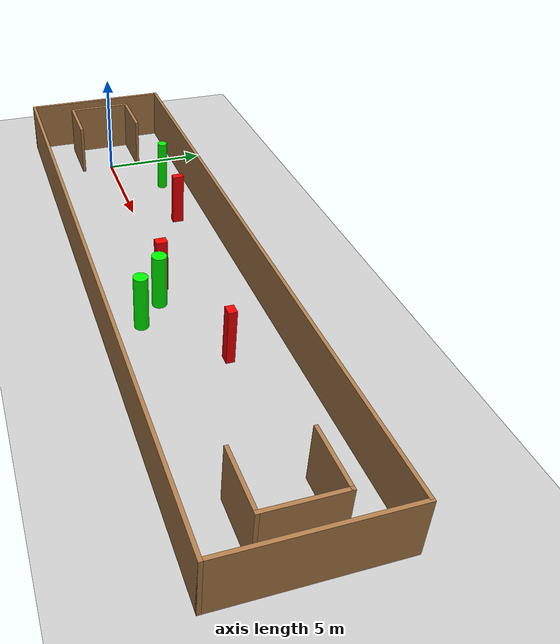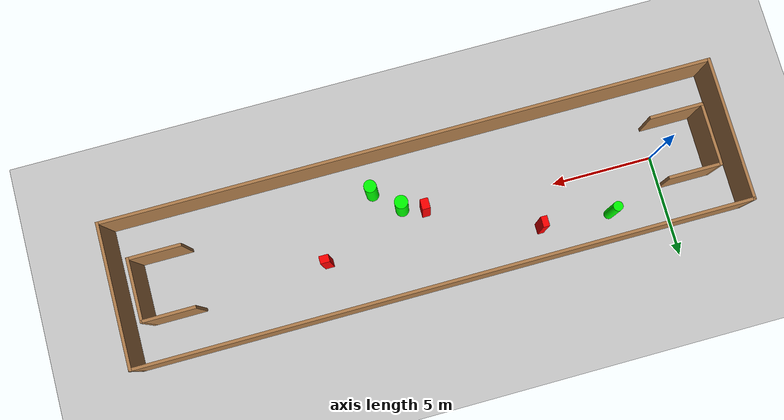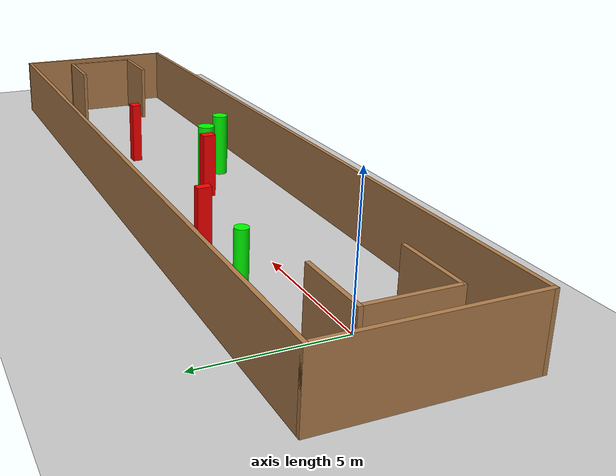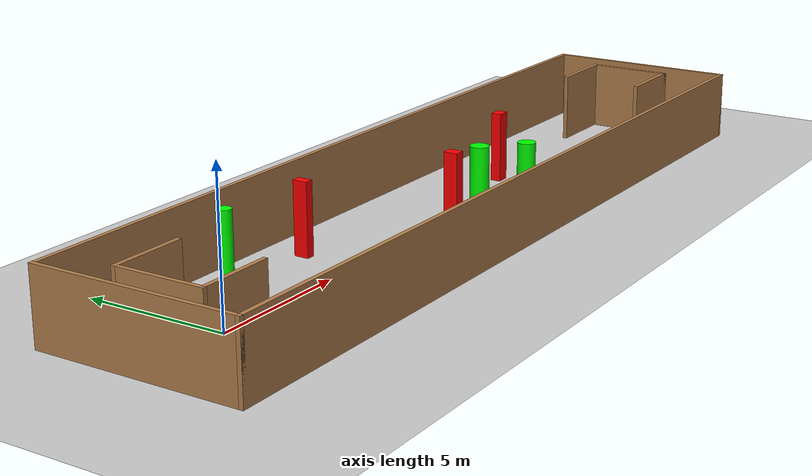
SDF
<sdf version="1.7">
 <world name="default">
  <light name="sun" type="directional">
   <pose>0 0 10 0 -0 0</pose>
   <diffuse>0.8 0.8 0.8 1</diffuse>
   <specular>0.2 0.2 0.2 1</specular>
   <attenuation>
    <range>1000</range>
    <constant>0.9</constant>
    <linear>0.01</linear>
    <quadratic>0.001</quadratic>
   </attenuation>
   <direction>-0.5 0.1 -0.9</direction>
   <spot><inner_angle>0</inner_angle><outer_angle>0</outer_angle><falloff>0</falloff></spot>
  </light>
  <model name="ground_plane">
   <static>1</static>
   <link name="link">
    <collision name="collision">
     <geometry><plane><normal>0 0 1</normal><size>100 100</size></plane></geometry>
     <surface>
      <contact><collide_bitmask>65535</collide_bitmask></contact>
      <friction><ode><mu>100</mu><mu2>50</mu2></ode></friction>
     </surface>
    </collision>
    <visual name="visual">
     <cast_shadows>0</cast_shadows>
     <geometry><plane><normal>0 0 1</normal><size>100 100</size></plane></geometry>
     <material>
      <script><uri>file://media/materials/scripts/gazebo.material</uri><name>Gazebo/Grey</name></script>
     </material>
    </visual>
   </link>
  </model>
  <gravity>0 0 -9.8</gravity>
  <magnetic_field>6e-06 2.3e-05 -4.2e-05</magnetic_field>
  <atmosphere type="adiabatic"/>
  <physics type="ode">
   <max_step_size>0.001</max_step_size>
   <real_time_factor>1</real_time_factor>
   <real_time_update_rate>1000</real_time_update_rate>
  </physics>
  <scene><ambient>0.4 0.4 0.4 1</ambient><background>0.7 0.7 0.7 1</background><shadows>1</shadows></scene>
  <spherical_coordinates>
   <surface_model>EARTH_WGS84</surface_model>
   <latitude_deg>0</latitude_deg>
   <longitude_deg>0</longitude_deg>
   <elevation>0</elevation>
   <heading_deg>0</heading_deg>
  </spherical_coordinates>
  <model name="my_base_walls">
   <link name="Wall_0">
    <collision name="Wall_0_Collision">
     <geometry><box><size>7.15 0.15 2.5</size></box></geometry>
     <pose>0 0 1.25 0 -0 0</pose>
    </collision>
    <visual name="Wall_0_Visual">
     <pose>0 0 1.25 0 -0 0</pose>
     <geometry><box><size>7.15 0.15 2.5</size></box></geometry>
     <material>
      <script><uri>file://media/materials/scripts/gazebo.material</uri><name>Gazebo/Wood</name></script>
      <ambient>1 1 1 1</ambient>
     </material>
     <meta><layer>0</layer></meta>
    </visual>
    <pose>-15 0 0 0 -0 1.5708</pose>
   </link>
   <link name="Wall_10">
    <collision name="Wall_10_Collision">
     <geometry><box><size>2.65 0.15 2.5</size></box></geometry>
     <pose>0 0 1.25 0 -0 0</pose>
    </collision>
    <visual name="Wall_10_Visual">
     <pose>0 0 1.25 0 -0 0</pose>
     <geometry><box><size>2.65 0.15 2.5</size></box></geometry>
     <material>
      <script><uri>file://media/materials/scripts/gazebo.material</uri><name>Gazebo/Wood</name></script>
      <ambient>1 1 1 1</ambient>
     </material>
     <meta><layer>0</layer></meta>
    </visual>
    <pose>-12.75 -1.5 0 0 -0 0</pose>
   </link>
   <link name="Wall_12">
    <collision name="Wall_12_Collision">
     <geometry><box><size>2.65 0.15 2.5</size></box></geometry>
     <pose>0 0 1.25 0 -0 0</pose>
    </collision>
    <visual name="Wall_12_Visual">
     <pose>0 0 1.25 0 -0 0</pose>
     <geometry><box><size>2.65 0.15 2.5</size></box></geometry>
     <material>
      <script><uri>file://media/materials/scripts/gazebo.material</uri><name>Gazebo/Wood</name></script>
      <ambient>1 1 1 1</ambient>
     </material>
     <meta><layer>0</layer></meta>
    </visual>
    <pose>-12.75 1.5 0 0 -0 0</pose>
   </link>
   <link name="Wall_14">
    <collision name="Wall_14_Collision">
     <geometry><box><size>3.15 0.15 2.5</size></box></geometry>
     <pose>0 0 1.25 0 -0 0</pose>
    </collision>
    <visual name="Wall_14_Visual">
     <pose>0 0 1.25 0 -0 0</pose>
     <geometry><box><size>3.15 0.15 2.5</size></box></geometry>
     <material>
      <script><uri>file://media/materials/scripts/gazebo.material</uri><name>Gazebo/Wood</name></script>
      <ambient>1 1 1 1</ambient>
     </material>
     <meta><layer>0</layer></meta>
    </visual>
    <pose>14 0 0 0 -0 -1.5708</pose>
   </link>
   <link name="Wall_15">
    <collision name="Wall_15_Collision">
     <geometry><box><size>2.65 0.15 2.5</size></box></geometry>
     <pose>0 0 1.25 0 -0 0</pose>
    </collision>
    <visual name="Wall_15_Visual">
     <pose>0 0 1.25 0 -0 0</pose>
     <geometry><box><size>2.65 0.15 2.5</size></box></geometry>
     <material>
      <script><uri>file://media/materials/scripts/gazebo.material</uri><name>Gazebo/Wood</name></script>
      <ambient>1 1 1 1</ambient>
     </material>
     <meta><layer>0</layer></meta>
    </visual>
    <pose>12.75 -1.5 0 0 -0 3.14159</pose>
   </link>
   <link name="Wall_17">
    <collision name="Wall_17_Collision">
     <geometry><box><size>2.65 0.15 2.5</size></box></geometry>
     <pose>0 0 1.25 0 -0 0</pose>
    </collision>
    <visual name="Wall_17_Visual">
     <pose>0 0 1.25 0 -0 0</pose>
     <geometry><box><size>2.65 0.15 2.5</size></box></geometry>
     <material>
      <script><uri>file://media/materials/scripts/gazebo.material</uri><name>Gazebo/Wood</name></script>
      <ambient>1 1 1 1</ambient>
     </material>
     <meta><layer>0</layer></meta>
    </visual>
    <pose>12.75 1.5 0 0 -0 3.14159</pose>
   </link>
   <link name="Wall_2">
    <collision name="Wall_2_Collision">
     <geometry><box><size>30.15 0.15 2.5</size></box></geometry>
     <pose>0 0 1.25 0 -0 0</pose>
    </collision>
    <visual name="Wall_2_Visual">
     <pose>0 0 1.25 0 -0 0</pose>
     <geometry><box><size>30.15 0.15 2.5</size></box></geometry>
     <material>
      <script><uri>file://media/materials/scripts/gazebo.material</uri><name>Gazebo/Wood</name></script>
      <ambient>1 1 1 1</ambient>
     </material>
     <meta><layer>0</layer></meta>
    </visual>
    <pose>-0 -3.5 0 0 -0 0</pose>
   </link>
   <link name="Wall_4">
    <collision name="Wall_4_Collision">
     <geometry><box><size>30.15 0.15 2.5</size></box></geometry>
     <pose>0 0 1.25 0 -0 0</pose>
    </collision>
    <visual name="Wall_4_Visual">
     <pose>0 0 1.25 0 -0 0</pose>
     <geometry><box><size>30.15 0.15 2.5</size></box></geometry>
     <material>
      <script><uri>file://media/materials/scripts/gazebo.material</uri><name>Gazebo/Wood</name></script>
      <ambient>1 1 1 1</ambient>
     </material>
     <meta><layer>0</layer></meta>
    </visual>
    <pose>-0 3.5 0 0 -0 0</pose>
   </link>
   <link name="Wall_6">
    <collision name="Wall_6_Collision">
     <geometry><box><size>7.15 0.15 2.5</size></box></geometry>
     <pose>0 0 1.25 0 -0 0</pose>
    </collision>
    <visual name="Wall_6_Visual">
     <pose>0 0 1.25 0 -0 0</pose>
     <geometry><box><size>7.15 0.15 2.5</size></box></geometry>
     <material>
      <script><uri>file://media/materials/scripts/gazebo.material</uri><name>Gazebo/Wood</name></script>
      <ambient>1 1 1 1</ambient>
     </material>
     <meta><layer>0</layer></meta>
    </visual>
    <pose>15 0 0 0 -0 -1.5708</pose>
   </link>
   <link name="Wall_9">
    <collision name="Wall_9_Collision">
     <geometry><box><size>3.15 0.15 2.5</size></box></geometry>
     <pose>0 0 1.25 0 -0 0</pose>
    </collision>
    <visual name="Wall_9_Visual">
     <pose>0 0 1.25 0 -0 0</pose>
     <geometry><box><size>3.15 0.15 2.5</size></box></geometry>
     <material>
      <script><uri>file://media/materials/scripts/gazebo.material</uri><name>Gazebo/Wood</name></script>
      <ambient>1 1 1 1</ambient>
     </material>
     <meta><layer>0</layer></meta>
    </visual>
    <pose>-14 0 0 0 -0 -1.5708</pose>
   </link>
   <static>1</static>
   <pose>11.5 0 0 0 -0 0</pose>
  </model>
  <model name="cylinder1">
   <static>1</static>
   <link name="link">
    <inertial>
     <mass>1</mass>
     <inertia><ixx>0.5</ixx><ixy>0</ixy><ixz>0</ixz><iyy>0.5</iyy><iyz>0</iyz><izz>1</izz></inertia>
    </inertial>
    <collision name="collision">
     <geometry><cylinder><radius>0.32864703417014013</radius><length>2.5</length></cylinder></geometry>
    </collision>
    <visual name="visual">
     <geometry><cylinder><radius>0.32864703417014013</radius><length>2.5</length></cylinder></geometry>
     <material>
      <ambient>0 1 0 1</ambient>
      <diffuse>0 1 0 1</diffuse>
      <specular>0.1 0.1 0.1 1</specular>
      <emissive>0 0 0 0</emissive>
     </material>
    </visual>
   </link>
   <pose>12.532618588274893 -0.7228936862525601 1.25 0 0 0</pose>
  </model>
  <model name="cylinder2">
   <static>1</static>
   <link name="link">
    <inertial>
     <mass>1</mass>
     <inertia><ixx>0.5</ixx><ixy>0</ixy><ixz>0</ixz><iyy>0.5</iyy><iyz>0</iyz><izz>1</izz></inertia>
    </inertial>
    <collision name="collision">
     <geometry><cylinder><radius>0.23763443740677104</radius><length>2.5</length></cylinder></geometry>
    </collision>
    <visual name="visual">
     <geometry><cylinder><radius>0.23763443740677104</radius><length>2.5</length></cylinder></geometry>
     <material>
      <ambient>0 1 0 1</ambient>
      <diffuse>0 1 0 1</diffuse>
      <specular>0.1 0.1 0.1 1</specular>
      <emissive>0 0 0 0</emissive>
     </material>
    </visual>
   </link>
   <pose>2.777196653440246 2.1634172894527754 1.25 0 0 0</pose>
  </model>
  <model name="cylinder3">
   <static>1</static>
   <link name="link">
    <inertial>
     <mass>1</mass>
     <inertia><ixx>0.5</ixx><ixy>0</ixy><ixz>0</ixz><iyy>0.5</iyy><iyz>0</iyz><izz>1</izz></inertia>
    </inertial>
    <collision name="collision">
     <geometry><cylinder><radius>0.3100917154943168</radius><length>2.5</length></cylinder></geometry>
    </collision>
    <visual name="visual">
     <geometry><cylinder><radius>0.3100917154943168</radius><length>2.5</length></cylinder></geometry>
     <material>
      <ambient>0 1 0 1</ambient>
      <diffuse>0 1 0 1</diffuse>
      <specular>0.1 0.1 0.1 1</specular>
      <emissive>0 0 0 0</emissive>
     </material>
    </visual>
   </link>
   <pose>13.74923223626166 -1.831693470357585 1.25 0 0 0</pose>
  </model>
  <model name="box1">
   <static>1</static>
   <link name="link">
    <inertial>
     <mass>1</mass>
     <inertia><ixx>0.083</ixx><ixy>0</ixy><ixz>0</ixz><iyy>0.083</iyy><iyz>0</iyz><izz>0.083</izz></inertia>
    </inertial>
    <collision name="collision">
     <geometry><box><size>0.39635826232327054 0.5067247454791708 2.5</size></box></geometry>
    </collision>
    <visual name="visual">
     <geometry><box><size>0.39635826232327054 0.5067247454791708 2.5</size></box></geometry>
     <material>
      <ambient>1 0 0 1</ambient>
      <diffuse>1 0 0 1</diffuse>
      <specular>0.1 0.1 0.1 1</specular>
      <emissive>0 0 0 0</emissive>
     </material>
    </visual>
    <sensor name="my_contact" type="contact">
     <contact><collision>box_collision</collision><topic>__default_topic__</topic></contact>
    </sensor>
   </link>
   <pose>11.471184317657286 -0.3482166917467069 1.25 0 0 0</pose>
  </model>
  <model name="box2">
   <static>1</static>
   <link name="link">
    <inertial>
     <mass>1</mass>
     <inertia><ixx>0.083</ixx><ixy>0</ixy><ixz>0</ixz><iyy>0.083</iyy><iyz>0</iyz><izz>0.083</izz></inertia>
    </inertial>
    <collision name="collision">
     <geometry><box><size>0.459983179972445 0.36824374051412945 2.5</size></box></geometry>
    </collision>
    <visual name="visual">
     <geometry><box><size>0.459983179972445 0.36824374051412945 2.5</size></box></geometry>
     <material>
      <ambient>1 0 0 1</ambient>
      <diffuse>1 0 0 1</diffuse>
      <specular>0.1 0.1 0.1 1</specular>
      <emissive>0 0 0 0</emissive>
     </material>
    </visual>
    <sensor name="my_contact" type="contact">
     <contact><collision>box_collision</collision><topic>__default_topic__</topic></contact>
    </sensor>
   </link>
   <pose>16.676804841012995 0.924237825051792 1.25 0 0 0</pose>
  </model>
  <model name="box3">
   <static>1</static>
   <link name="link">
    <inertial>
     <mass>1</mass>
     <inertia><ixx>0.083</ixx><ixy>0</ixy><ixz>0</ixz><iyy>0.083</iyy><iyz>0</iyz><izz>0.083</izz></inertia>
    </inertial>
    <collision name="collision">
     <geometry><box><size>0.31213964996797655 0.5135771728524944 2.5</size></box></geometry>
    </collision>
    <visual name="visual">
     <geometry><box><size>0.31213964996797655 0.5135771728524944 2.5</size></box></geometry>
     <material>
      <ambient>1 0 0 1</ambient>
      <diffuse>1 0 0 1</diffuse>
      <specular>0.1 0.1 0.1 1</specular>
      <emissive>0 0 0 0</emissive>
     </material>
    </visual>
    <sensor name="my_contact" type="contact">
     <contact><collision>box_collision</collision><topic>__default_topic__</topic></contact>
    </sensor>
   </link>
   <pose>6.277650990660746 1.9442729628361013 1.25 0 0 0</pose>
  </model>
 </world>
</sdf>
